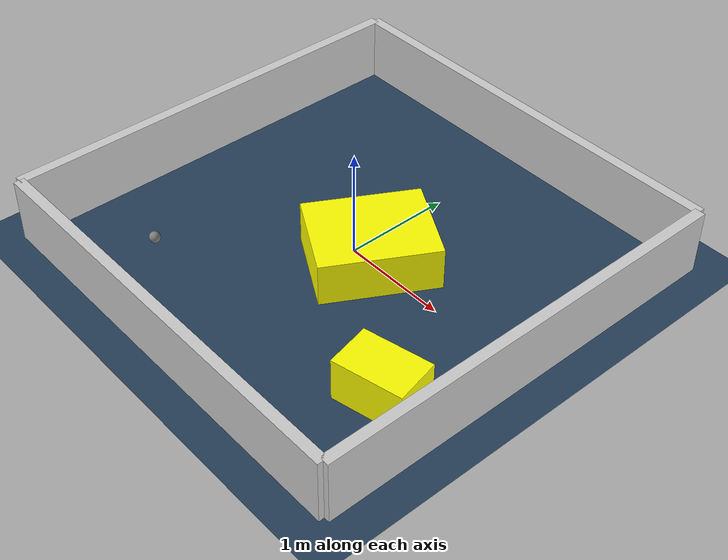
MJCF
<?xml version="1.0" ?>
<mujoco model="generated_environment">
  <option timestep="0.01" integrator="RK4" cone="elliptic"/>
  <default>
    <geom density="1"/>
  </default>
  <asset>
    <texture builtin="gradient" height="3072" rgb1="0.3 0.5 0.7" rgb2="0 0 0" type="skybox" width="512"/>
    <texture builtin="checker" height="300" mark="edge" markrgb="0.8 0.8 0.8" name="groundplane" rgb1="0.2 0.3 0.4" rgb2="0.1 0.2 0.3" type="2d" width="300"/>
    <material name="groundplane" reflectance="0.2" texrepeat="5 5" texture="groundplane" texuniform="true"/>
    <material name="robot" rgba="0.0 1.0 0.0 1"/>
  </asset>
  <worldbody>
    <light dir="0 0 -1" directional="true" pos="0 0 1.5"/>
    <geom condim="4" friction="1.0 0.005 0.001" material="groundplane" name="floor" size="0 0 0.05" type="plane"/>
    <body name="walls">
      <geom name="wall_1" condim="4" pos="-2.0 0.0 0.3" rgba="0.800000011920929 0.800000011920929 0.800000011920929 1.0" size="0.05 2.0 0.3" type="box"/>
      <geom name="wall_2" condim="4" pos="2.0 0.0 0.3" rgba="0.800000011920929 0.800000011920929 0.800000011920929 1.0" size="0.05 2.0 0.3" type="box"/>
      <geom name="wall_3" condim="4" pos="0.0 -2.0 0.3" rgba="0.800000011920929 0.800000011920929 0.800000011920929 1.0" size="2.0 0.05 0.3" type="box"/>
      <geom name="wall_4" condim="4" pos="0.0 2.0 0.3" rgba="0.800000011920929 0.800000011920929 0.800000011920929 1.0" size="2.0 0.05 0.3" type="box"/>
    </body>
    <body name="robot">
      <joint name="joint_x" type="slide" pos="0 0 0" axis="1 0 0"/>
      <joint name="joint_y" type="slide" pos="0 0 0" axis="0 1 0"/>
      <geom name="robot" type="sphere" pos="-1.0582103021736433 -1.3116693934723007 0.2" size="0.05" mass="5." friction="1.0 0.005 0.0001" condim="4"/>
      <site name="sensor_ball"/>
    </body>
    <body name="obstacle_1_movable">
      <geom name="obstacle_1_movable" condim="4" pos="0.21253907825124108 -0.0009177243326541351 0.2" euler="0 0 330.59145646296207" friction="1.0 0.005 0.001" rgba="1 1 0 1" size="0.41967040454193305 0.527794439999016 0.2" type="box" mass="0.1"/>
      <joint type="free"/>
    </body>
    <body name="obstacle_2_movable">
      <geom name="obstacle_2_movable" condim="4" pos="1.439678331386664 -0.970172899753424 0.2" euler="0 0 282.8986349541908" friction="1.0 0.005 0.001" rgba="1 1 0 1" size="0.21091135395199304 0.32158629211615314 0.2" type="box" mass="0.1"/>
      <joint type="free"/>
    </body>
  </worldbody>
  <actuator>
    <motor name="actuator_x" joint="joint_x" gear="1" ctrlrange="-1 1"/>
    <motor name="actuator_y" joint="joint_y" gear="1" ctrlrange="-1 1"/>
  </actuator>
</mujoco>
